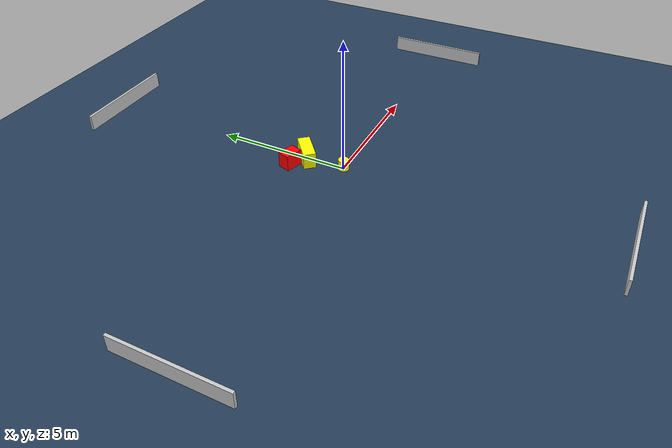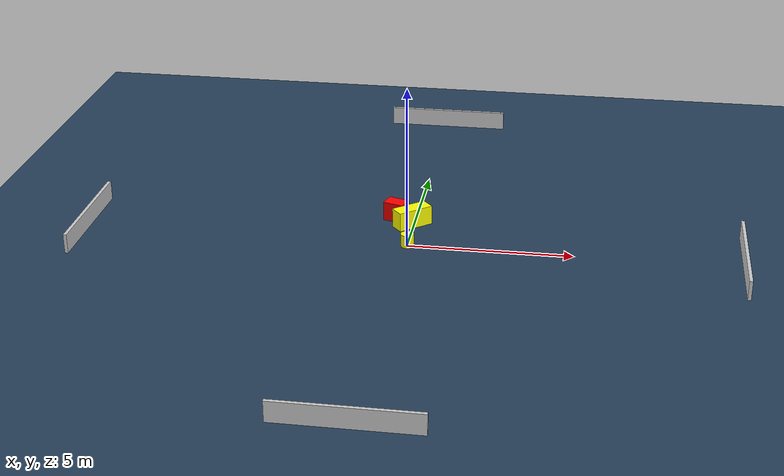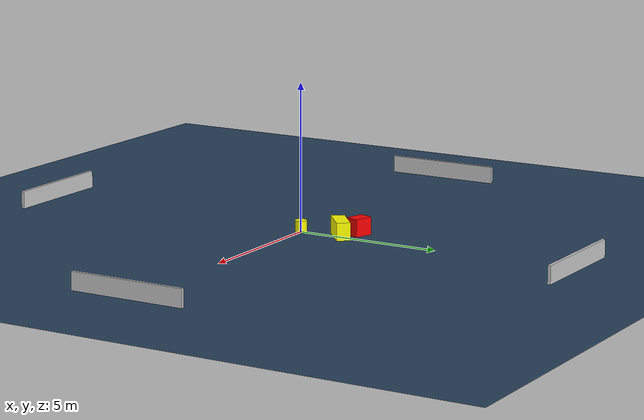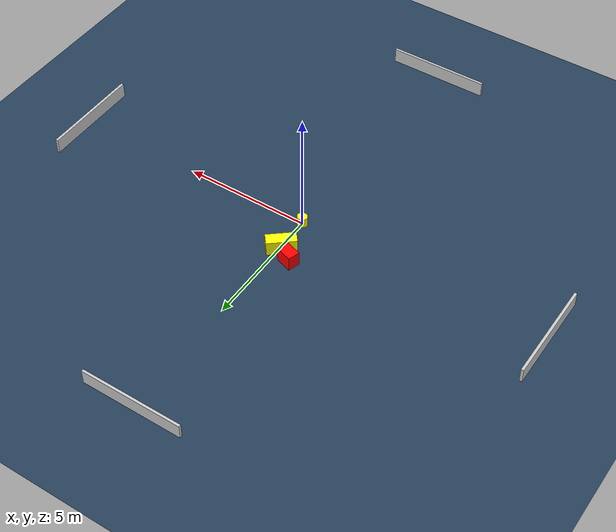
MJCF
<?xml version="1.0" ?>
<mujoco model="generated_environment">
  <option timestep="0.01" integrator="RK4" cone="elliptic"/>
  <default>
    <geom density="1"/>
  </default>
  <asset>
    <texture builtin="gradient" height="3072" name="skybox" rgb1="0.3 0.5 0.7" rgb2="0 0 0" type="skybox" width="512"/>
    <texture builtin="checker" height="300" name="groundplane" rgb1="0.2 0.3 0.4" rgb2="0.1 0.2 0.3" type="2d" width="300"/>
    <material name="groundplane" reflectance="0.2" texrepeat="5 5" texture="groundplane"/>
  </asset>
  <worldbody>
    <light dir="0 0 -1" directional="true" pos="0 0 1.5"/>
    <geom condim="3" friction="0.5 0.005 0.001" material="groundplane" name="floor" pos="0 0 0" size="0 0 0.05" type="plane"/>
    <body name="walls">
      <geom name="wall_1" condim="4" pos="-10.0 0.0 0.3" rgba="0.800000011920929 0.800000011920929 0.800000011920929 1.0" size="0.05 2.0 0.3" type="box"/>
      <geom name="wall_2" condim="4" pos="10.0 0.0 0.3" rgba="0.800000011920929 0.800000011920929 0.800000011920929 1.0" size="0.05 2.0 0.3" type="box"/>
      <geom name="wall_3" condim="4" pos="0.0 -10.0 0.3" rgba="0.800000011920929 0.800000011920929 0.800000011920929 1.0" size="2.0 0.05 0.3" type="box"/>
      <geom name="wall_4" condim="4" pos="0.0 10.0 0.3" rgba="0.800000011920929 0.800000011920929 0.800000011920929 1.0" size="2.0 0.05 0.3" type="box"/>
    </body>
    <body name="robot">
      <joint name="joint_x" type="slide" pos="0 0 0" axis="1 0 0"/>
      <joint name="joint_y" type="slide" pos="0 0 0" axis="0 1 0"/>
      <geom name="robot" type="cylinder" pos="0.0 0.0 0.2" size="0.2 0.2 0.0" mass="5.0" friction="1.0 0.005 0.0001" condim="4" rgba="1.0 1.0 0.0 1.0"/>
    </body>
    <body name="obstacle_1_movable">
      <geom name="obstacle_1_movable" condim="4" pos="-0.06749691217620285 1.4717829515117427 0.3" euler="0 0 129.94896479824422" friction="0.0 0.005 0.001" rgba="1.0 1.0 0.0 1.0" size="0.23276273796865646 0.5741728525272349 0.3" type="box" mass="0.1"/>
      <joint type="free"/>
    </body>
    <body name="obstacle_2_static">
      <geom name="obstacle_2_static" condim="4" pos="-0.6274368031704731 1.8488737559237403 0.3" euler="0 0 252.2602643672696" friction="0.0 0.005 0.001" rgba="1.0 0.0 0.0 1.0" size="0.2355835736938502 0.33051403477496155 0.3" type="box"/>
    </body>
  </worldbody>
  <actuator>
    <motor name="actuator_x" joint="joint_x" gear="1" ctrlrange="-1 1"/>
    <motor name="actuator_y" joint="joint_y" gear="1" ctrlrange="-1 1"/>
  </actuator>
</mujoco>
